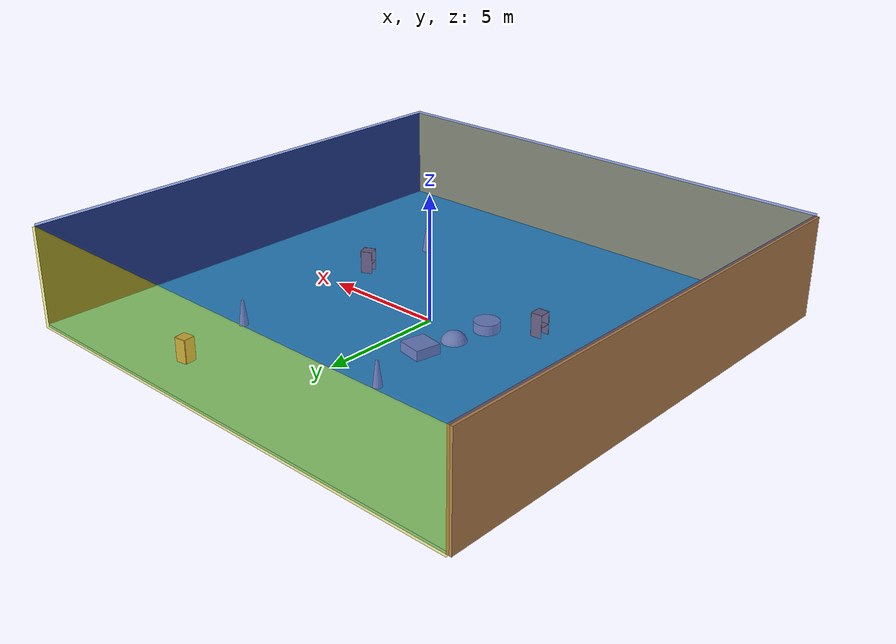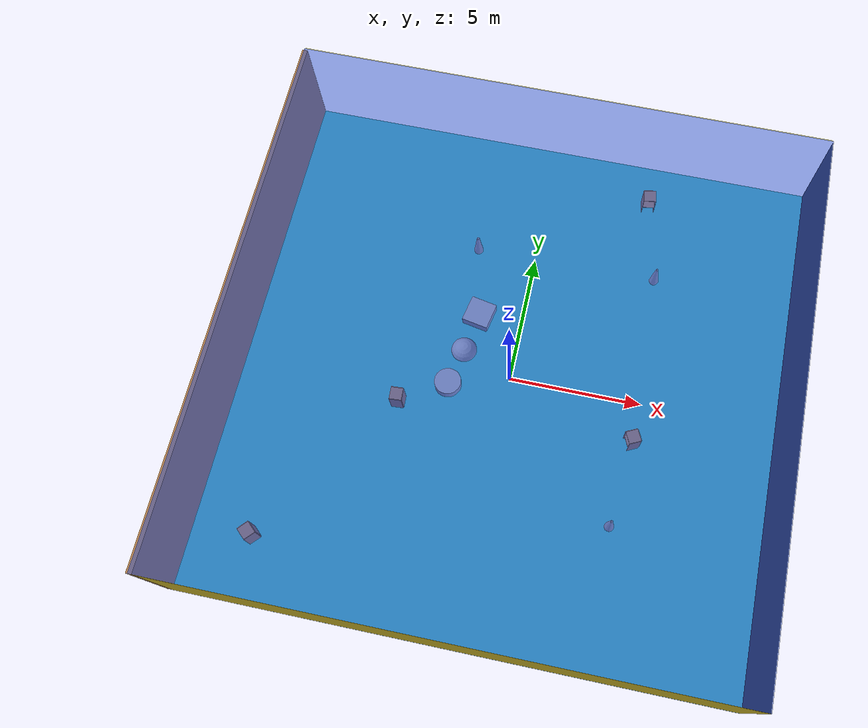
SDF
<sdf version="1.4">
 <world name="default">
  <physics type="ode">
   <max_step_size>0.001</max_step_size>
   <real_time_factor>1</real_time_factor>
   <real_time_update_rate>1000</real_time_update_rate>
   <gravity>0 0 -9.8</gravity>
  </physics>
  <scene><ambient>0.4 0.4 0.4 1</ambient><background>0.7 0.7 0.7 1</background><shadows>1</shadows></scene>
  <model name="Surrounding">
   <static>1</static>
   <link name="Ceiling">
    <collision name="Ceiling_Collision"><geometry><box><size>20 20 0.1</size></box></geometry></collision>
    <visual name="Ceiling_Visual">
     <geometry><box><size>20 20 0.1</size></box></geometry>
     <material>
      <script><uri>file://media/materials/scripts/gazebo.material</uri><name>Gazebo/BlueTransparent</name></script>
     </material>
    </visual>
    <pose>0 0 4.05 0 0 0</pose>
   </link>
   <link name="Wall_South">
    <collision name="Wall_South_Collision">
     <geometry><box><size>20 0 4</size></box></geometry>
     <pose>0 0 2 0 -0 0</pose>
    </collision>
    <visual name="Wall_South_Visual">
     <pose>0 0 2 0 -0 0</pose>
     <geometry><box><size>20 0 4</size></box></geometry>
     <material>
      <script><uri>file://media/materials/scripts/gazebo.material</uri><name>Gazebo/ZincYellow</name></script>
     </material>
    </visual>
    <velocity_decay><linear>0</linear><angular>0</angular></velocity_decay>
    <pose>0 -10 0 0 -0 0</pose>
   </link>
   <link name="Wall_East">
    <collision name="Wall_21_Collision">
     <geometry><box><size>20 0 4</size></box></geometry>
     <pose>0 0 2 0 -0 0</pose>
    </collision>
    <visual name="Wall_21_Visual">
     <pose>0 0 2 0 -0 0</pose>
     <geometry><box><size>20 0 4</size></box></geometry>
     <material>
      <script><uri>file://media/materials/scripts/gazebo.material</uri><name>Gazebo/FlatBlack</name></script>
     </material>
    </visual>
    <velocity_decay><linear>0</linear><angular>0</angular></velocity_decay>
    <pose>10 0 0 0 -0 1.5708</pose>
   </link>
   <link name="Wall_North">
    <collision name="Wall_22_Collision">
     <geometry><box><size>20 0.2 4</size></box></geometry>
     <pose>0 0 2 0 -0 0</pose>
    </collision>
    <visual name="Wall_22_Visual">
     <pose>0 0 2 0 -0 0</pose>
     <geometry><box><size>20 0.2 4</size></box></geometry>
     <material>
      <script>
       <uri>file://media/materials/scripts/gazebo.material</uri>
       <name>Gazebo/YellowTransparent</name>
      </script>
     </material>
    </visual>
    <velocity_decay><linear>0</linear><angular>0</angular></velocity_decay>
    <pose>0 10 0 0 -0 0</pose>
   </link>
   <link name="Wall_West">
    <collision name="Wall_23_Collision">
     <geometry><box><size>20 0.2 4</size></box></geometry>
     <pose>0 0 2 0 -0 0</pose>
    </collision>
    <visual name="Wall_23_Visual">
     <pose>0 0 2 0 -0 0</pose>
     <geometry><box><size>20 0.2 4</size></box></geometry>
     <material>
      <script><uri>file://media/materials/scripts/gazebo.material</uri><name>Gazebo/Wood</name></script>
     </material>
    </visual>
    <velocity_decay><linear>0</linear><angular>0</angular></velocity_decay>
    <pose>-10 0 0 0 0 -1.5708</pose>
   </link>
   <link name="Ground_link">
    <collision name="collision">
     <pose>0 0 .05 0 -0 0</pose>
     <geometry><box><size>20 20 0.1</size></box></geometry>
    </collision>
    <visual name="visual">
     <pose>0 0 .05 0 -0 0</pose>
     <geometry><box><size>20 20 0.1</size></box></geometry>
     <material>
      <script><uri>file://media/materials/scripts/gazebo.material</uri><name>Gazebo/Turquoise</name></script>
     </material>
    </visual>
   </link>
   <static>1</static>
  </model>
  <spherical_coordinates>
   <surface_model>EARTH_WGS84</surface_model>
   <latitude_deg>0</latitude_deg>
   <longitude_deg>0</longitude_deg>
   <elevation>0</elevation>
   <heading_deg>0</heading_deg>
  </spherical_coordinates>
  <light name="lightball_0" type="diffuse">
   <diffuse>0.8 0.8 0.8 1</diffuse>
   <specular>0.2 0.2 0.2 1</specular>
   <attenuation>
    <range>100</range>
    <constant>0.7</constant>
    <linear>0.01</linear>
    <quadratic>0.001</quadratic>
   </attenuation>
   <direction>-0.5 0.1 -0.9</direction>
   <pose>8.23763006238 7.3288887895 1.15339794046 0 0 0</pose>
  </light>
  <light name="lightball_1" type="diffuse">
   <diffuse>0.8 0.8 0.8 1</diffuse>
   <specular>0.2 0.2 0.2 1</specular>
   <attenuation>
    <range>100</range>
    <constant>0.7</constant>
    <linear>0.01</linear>
    <quadratic>0.001</quadratic>
   </attenuation>
   <direction>-0.5 0.1 -0.9</direction>
   <pose>-4.4828146861 8.56803769715 3.665600268 0 0 0</pose>
  </light>
  <light name="lightball_2" type="diffuse">
   <diffuse>0.8 0.8 0.8 1</diffuse>
   <specular>0.2 0.2 0.2 1</specular>
   <attenuation>
    <range>100</range>
    <constant>0.7</constant>
    <linear>0.01</linear>
    <quadratic>0.001</quadratic>
   </attenuation>
   <direction>-0.5 0.1 -0.9</direction>
   <pose>2.93732301218 -4.99811937801 0.81030632454 0 0 0</pose>
  </light>
  <light name="lightball_3" type="diffuse">
   <diffuse>0.8 0.8 0.8 1</diffuse>
   <specular>0.2 0.2 0.2 1</specular>
   <attenuation>
    <range>100</range>
    <constant>0.7</constant>
    <linear>0.01</linear>
    <quadratic>0.001</quadratic>
   </attenuation>
   <direction>-0.5 0.1 -0.9</direction>
   <pose>-8.08724460015 9.49266420364 3.50554101053 0 0 0</pose>
  </light>
  <light name="lightball_4" type="diffuse">
   <diffuse>0.8 0.8 0.8 1</diffuse>
   <specular>0.2 0.2 0.2 1</specular>
   <attenuation>
    <range>100</range>
    <constant>0.7</constant>
    <linear>0.01</linear>
    <quadratic>0.001</quadratic>
   </attenuation>
   <direction>-0.5 0.1 -0.9</direction>
   <pose>9.46226435827 -4.76378825753 2.41324576921 0 0 0</pose>
  </light>
  <light name="lightball_5" type="diffuse">
   <diffuse>0.8 0.8 0.8 1</diffuse>
   <specular>0.2 0.2 0.2 1</specular>
   <attenuation>
    <range>100</range>
    <constant>0.7</constant>
    <linear>0.01</linear>
    <quadratic>0.001</quadratic>
   </attenuation>
   <direction>-0.5 0.1 -0.9</direction>
   <pose>-4.65796158177 4.18721282978 2.1609662136 0 0 0</pose>
  </light>
  <light name="lightball_6" type="diffuse">
   <diffuse>0.8 0.8 0.8 1</diffuse>
   <specular>0.2 0.2 0.2 1</specular>
   <attenuation>
    <range>100</range>
    <constant>0.7</constant>
    <linear>0.01</linear>
    <quadratic>0.001</quadratic>
   </attenuation>
   <direction>-0.5 0.1 -0.9</direction>
   <pose>-2.32137482789 2.72110096857 0.873985790632 0 0 0</pose>
  </light>
  <light name="lightball_7" type="diffuse">
   <diffuse>0.8 0.8 0.8 1</diffuse>
   <specular>0.2 0.2 0.2 1</specular>
   <attenuation>
    <range>100</range>
    <constant>0.7</constant>
    <linear>0.01</linear>
    <quadratic>0.001</quadratic>
   </attenuation>
   <direction>-0.5 0.1 -0.9</direction>
   <pose>0.492211355876 6.07128187515 1.08880273745 0 0 0</pose>
  </light>
  <light name="lightball_8" type="diffuse">
   <diffuse>0.8 0.8 0.8 1</diffuse>
   <specular>0.2 0.2 0.2 1</specular>
   <attenuation>
    <range>100</range>
    <constant>0.7</constant>
    <linear>0.01</linear>
    <quadratic>0.001</quadratic>
   </attenuation>
   <direction>-0.5 0.1 -0.9</direction>
   <pose>-0.866845494966 6.16695832532 1.14445770452 0 0 0</pose>
  </light>
  <include><uri>model://cabinet</uri><pose>-7.7260197484 -7.60873789246 0 0 0 0.834579416096</pose></include>
  <include><uri>model://cabinet</uri><pose>-3.84686831362 -1.71112332426 0 0 0 0.0580960987188</pose></include>
  <include>
   <uri>model://textured_shapes</uri>
   <pose>-1.90337335888 0.77803758346 0 0 0 2.95246327952</pose>
  </include>
  <include>
   <uri>model://construction_cone</uri>
   <pose>-2.25211290824 4.99566565346 0 0 0 2.57989848316</pose>
  </include>
  <include>
   <uri>model://construction_cone</uri>
   <pose>4.61184343814 -4.74095686007 0 0 0 0.273829216062</pose>
  </include>
  <include><uri>model://cabinet</uri><pose>4.87350628482 -1.54435861727 0 0 0 0.450735395035</pose></include>
  <include>
   <uri>model://construction_cone</uri>
   <pose>4.69608953226 5.07600642565 0 0 0 0.45550631391</pose>
  </include>
  <include><uri>model://cabinet</uri><pose>3.94400515829 8.21863619017 0 0 0 1.71945706499</pose></include>
 </world>
</sdf>

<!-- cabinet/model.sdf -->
<sdf version="1.5">
  <model name="cabinet">
    <static>true</static>
    <link name="cabinet_bottom_plate">
      <inertial>
        <pose>0 0 -1 0 0 0</pose>
        <inertia>
          <ixx>2.050000</ixx>
          <ixy>0</ixy>
          <ixz>0</ixz>
          <iyy>2.050000</iyy>
          <iyz>0</iyz>
          <izz>2.050000</izz>
        </inertia>
        <mass>25.000000</mass>
      </inertial>
      <collision name="cabinet_bottom_plate_geom">
        <pose>0 0 0.010000 0 0 0</pose>
        <geometry>
          <box>
            <size>0.450000 0.450000 0.020000</size>
          </box>
        </geometry>
      </collision>
      <visual name="cabinet_bottom_plate_geom_visual">
        <pose>0 0 0.010000 0 0 0</pose>
        <geometry>
          <box>
            <size>0.450000 0.450000 0.020000</size>
          </box>
        </geometry>
        <material>
          <script>
            <uri>model://media/materials/scripts/gazebo.material</uri>
            <name>Gazebo/Wood</name>
          </script>
        </material>
      </visual>
      <collision name="cabinet_bottom_plate_geom_cabinet_back_plate">
        <pose>0.235000 0 0.510000 0 0 0</pose>
        <geometry>
          <box>
            <size>0.020000 0.450000 1.020000</size>
          </box>
        </geometry>
      </collision>
      <visual name="cabinet_bottom_plate_geom_cabinet_back_plate_visual">
        <pose>0.235000 0 0.510000 0 0 0</pose>
        <geometry>
          <box>
            <size>0.020000 0.450000 1.020000</size>
          </box>
        </geometry>
        <material>
          <script>
            <uri>model://media/materials/scripts/gazebo.material</uri>
            <name>Gazebo/Wood</name>
          </script>
        </material>
      </visual>
      <collision name="cabinet_bottom_plate_geom_cabinet_left_plate">
        <pose>0 0.235000 0.510000 0 0 0</pose>
        <geometry>
          <box>
            <size>0.450000 0.020000 1.020000</size>
          </box>
        </geometry>
      </collision>
      <visual name="cabinet_bottom_plate_geom_cabinet_left_plate_visual">
        <pose>0 0.235000 0.510000 0 0 0</pose>
        <geometry>
          <box>
            <size>0.450000 0.020000 1.020000</size>
          </box>
        </geometry>
        <material>
          <script>
            <uri>model://media/materials/scripts/gazebo.material</uri>
            <name>Gazebo/Wood</name>
          </script>
        </material>
      </visual>
      <collision name="cabinet_bottom_plate_geom_cabinet_middle_plate">
        <pose>0 0 0.510000 0 0 0</pose>
        <geometry>
          <box>
            <size>0.450000 0.450000 0.020000</size>
          </box>
        </geometry>
      </collision>
      <visual name="cabinet_bottom_plate_geom_cabinet_middle_plate_visual">
        <pose>0 0 0.510000 0 0 0</pose>
        <geometry>
          <box>
            <size>0.450000 0.450000 0.020000</size>
          </box>
        </geometry>
        <material>
          <script>
            <uri>model://media/materials/scripts/gazebo.material</uri>
            <name>Gazebo/Wood</name>
          </script>
        </material>
      </visual>
      <collision name="cabinet_bottom_plate_geom_cabinet_right_plate">
        <pose>0 -0.235000 0.510000 0 0 0</pose>
        <geometry>
          <box>
            <size>0.450000 0.020000 1.020000</size>
          </box>
        </geometry>
      </collision>
      <visual name="cabinet_bottom_plate_geom_cabinet_right_plate_visual">
        <pose>0 -0.235000 0.510000 0 0 0</pose>
        <geometry>
          <box>
            <size>0.450000 0.020000 1.020000</size>
          </box>
        </geometry>
        <material>
          <script>
            <uri>model://media/materials/scripts/gazebo.material</uri>
            <name>Gazebo/Wood</name>
          </script>
        </material>
      </visual>
      <collision name="cabinet_bottom_plate_geom_cabinet_top_plate">
        <pose>0 0 1.010000 0 0 0</pose>
        <geometry>
          <box>
            <size>0.450000 0.450000 0.020000</size>
          </box>
        </geometry>
      </collision>
      <visual name="cabinet_bottom_plate_geom_cabinet_top_plate_visual">
        <pose>0 0 1.010000 0 0 0</pose>
        <geometry>
          <box>
            <size>0.450000 0.450000 0.020000</size>
          </box>
        </geometry>
        <material>
          <script>
            <uri>model://media/materials/scripts/gazebo.material</uri>
            <name>Gazebo/Wood</name>
          </script>
        </material>
      </visual>
    </link>
  </model>
</sdf>

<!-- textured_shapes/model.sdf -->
<sdf version="1.6">
  <model name="textured_shapes">
    <pose>0 0 0.5 0 0 0</pose>
    <link name="box">
      <pose>0 -1.5 0 0 0 0</pose>
      <collision name="collision">
        <geometry>
          <box>
            <size>1 1 1</size>
          </box>
        </geometry>
      </collision>
      <visual name="visual">
        <geometry>
          <box>
            <size>1 1 1</size>
          </box>
        </geometry>
        <material>
          <script>
            <uri>model://../model_source/models/textured_shapes/materials/scripts</uri>
            <uri>model://../model_source/models/textured_shapes/materials/textures</uri>
            <name>TexturedShape/Squares</name>
          </script>
        </material>
      </visual>
    </link>
    <link name="sphere">
      <collision name="collision">
        <geometry>
          <sphere>
            <radius>0.5</radius>
          </sphere>
        </geometry>
      </collision>
      <visual name="visual">
        <geometry>
          <sphere>
            <radius>0.5</radius>
          </sphere>
        </geometry>
        <material>
          <script>
            <uri>model://../model_source/models/textured_shapes/materials/scripts</uri>
            <uri>model://../model_source/models/textured_shapes/materials/textures</uri>
            <name>TexturedShape/Squares</name>
          </script>
        </material>
      </visual>
    </link>
    <link name="cylinder">
      <pose>0 1.5 0 0 0 0</pose>
      <collision name="collision">
        <geometry>
          <cylinder>
            <radius>0.5</radius>
            <length>1</length>
          </cylinder>
        </geometry>
      </collision>
      <visual name="visual">
        <geometry>
          <cylinder>
            <radius>0.5</radius>
            <length>1</length>
          </cylinder>
        </geometry>
        <material>
          <script>
            <uri>model://../model_source/models/textured_shapes/materials/scripts</uri>
            <uri>model://../model_source/models/textured_shapes/materials/textures</uri>
            <name>TexturedShape/Squares</name>
          </script>
        </material>
      </visual>
    </link>
  </model>
</sdf>

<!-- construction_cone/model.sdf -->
<sdf version="1.5">
  <model name="Construction Cone">
    <link name="link">
      <collision name="collision">
        <geometry>
          <mesh>
            <scale>10 10 10</scale>
            <uri>file://isr-testbed/construction_cone/meshes/construction_cone.dae</uri>
          </mesh>
        </geometry>
      </collision>
      <visual name="visual">
        <geometry>
          <mesh>
            <scale>10 10 10</scale>
            <uri>file://isr-testbed/construction_cone/meshes/construction_cone.dae</uri>
          </mesh>
        </geometry>
      </visual>
    </link>
  </model>
</sdf>
